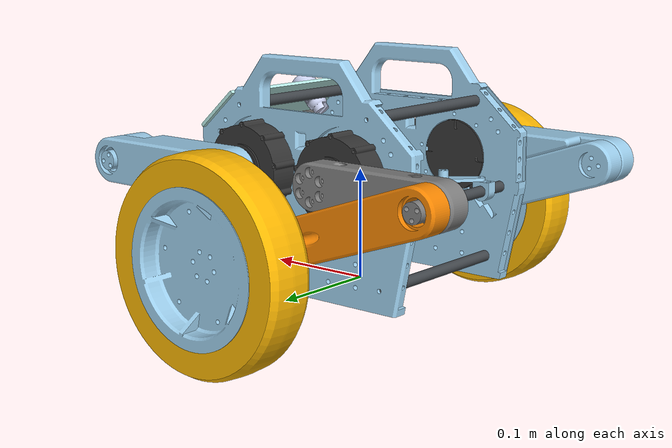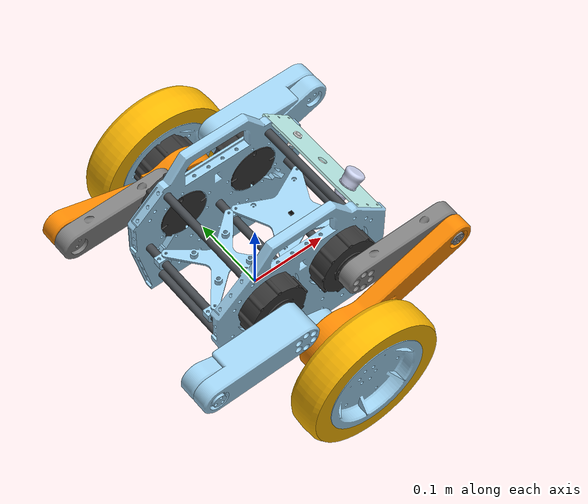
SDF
<?xml version="1.0" ?>
<!-- Generated using onshape-to-robot -->
<!-- OnShape document_id: 7e9c507bcee485da64990cd9 / workspace_id: eabac2199dede4982074148e -->
<sdf version="1.7">
    <model name="cyberbot">
        <!-- Link base -->
        <link name="base">
            <sensor name="imu_sensor" type="imu">
                <always_on>1</always_on>
                <update_rate>10</update_rate>
                <visualize>true</visualize>
                <topic>imu</topic>
            </sensor>
            <inertial>
                <pose relative_to="base">0.00170388 -0.00342466 0.102967 0 0 0</pose>
                <mass>1.76333</mass>
                <inertia>
                    <ixx>0.0141043</ixx>
                    <ixy>-1.25579e-05</ixy>
                    <ixz>-0.000139827</ixz>
                    <iyy>0.00813179</iyy>
                    <iyz>-6.75019e-06</iyz>
                    <izz>0.0181699</izz>
                </inertia>
            </inertial>
            <pose>0 0 0 0 -0 0</pose>
            <!-- Part cybergear -->
            <visual name="cybergear_visual_mesh">
                <pose relative_to="base">-0.05 0.0745 0.108809 1.5708 -0.680678 3.14159</pose>
                <geometry>
                    <mesh>
                        <uri>model://cyberbot_description/sdf/assets/cybergear.stl</uri>
                    </mesh>
                </geometry>
                <material>
                    <ambient>0.207843 0.207843 0.207843 1.0</ambient>
                    <diffuse>0.207843 0.207843 0.207843 1.0</diffuse>
                    <specular>0.1 0.1 0.1 1</specular>
                    <emissive>0 0 0 0</emissive>
                </material>
            </visual>
            <collision name="cybergear_collision_mesh">
                <pose relative_to="base">-0.05 0.0745 0.108809 1.5708 -0.680678 3.14159</pose>
                <geometry>
                    <mesh>
                        <uri>model://cyberbot_description/sdf/assets/cybergear.stl</uri>
                    </mesh>
                </geometry>
            </collision>
            <!-- Part panel -->
            <visual name="panel_visual_mesh">
                <pose relative_to="base">5.29091e-17 -0.0735 0.108809 1.5708 3.29597e-16 5.90644e-30</pose>
                <geometry>
                    <mesh>
                        <uri>model://cyberbot_description/sdf/assets/panel.stl</uri>
                    </mesh>
                </geometry>
                <material>
                    <ambient>0.615686 0.811765 0.929412 1.0</ambient>
                    <diffuse>0.615686 0.811765 0.929412 1.0</diffuse>
                    <specular>0.1 0.1 0.1 1</specular>
                    <emissive>0 0 0 0</emissive>
                </material>
            </visual>
            <collision name="panel_collision_mesh">
                <pose relative_to="base">5.29091e-17 -0.0735 0.108809 1.5708 3.29597e-16 5.90644e-30</pose>
                <geometry>
                    <mesh>
                        <uri>model://cyberbot_description/sdf/assets/panel.stl</uri>
                    </mesh>
                </geometry>
            </collision>
            <!-- Part attachment -->
            <visual name="attachment_visual_mesh">
                <pose relative_to="base">-2.35434e-16 -0.0535 0.0855762 -1.5708 -1.5708 0</pose>
                <geometry>
                    <mesh>
                        <uri>model://cyberbot_description/sdf/assets/attachment.stl</uri>
                    </mesh>
                </geometry>
                <material>
                    <ambient>0.615686 0.811765 0.929412 1.0</ambient>
                    <diffuse>0.615686 0.811765 0.929412 1.0</diffuse>
                    <specular>0.1 0.1 0.1 1</specular>
                    <emissive>0 0 0 0</emissive>
                </material>
            </visual>
            <collision name="attachment_collision_mesh">
                <pose relative_to="base">-2.35434e-16 -0.0535 0.0855762 -1.5708 -1.5708 0</pose>
                <geometry>
                    <mesh>
                        <uri>model://cyberbot_description/sdf/assets/attachment.stl</uri>
                    </mesh>
                </geometry>
            </collision>
            <!-- Part pc_holder -->
            <visual name="pc_holder_visual_mesh">
                <pose relative_to="base">0.06 -0.0035 0.0940762 2.76472e-15 1.76448e-15 3.14159</pose>
                <geometry>
                    <mesh>
                        <uri>model://cyberbot_description/sdf/assets/pc_holder.stl</uri>
                    </mesh>
                </geometry>
                <material>
                    <ambient>0.615686 0.811765 0.929412 1.0</ambient>
                    <diffuse>0.615686 0.811765 0.929412 1.0</diffuse>
                    <specular>0.1 0.1 0.1 1</specular>
                    <emissive>0 0 0 0</emissive>
                </material>
            </visual>
            <collision name="pc_holder_collision_mesh">
                <pose relative_to="base">0.06 -0.0035 0.0940762 2.76472e-15 1.76448e-15 3.14159</pose>
                <geometry>
                    <mesh>
                        <uri>model://cyberbot_description/sdf/assets/pc_holder.stl</uri>
                    </mesh>
                </geometry>
            </collision>
            <!-- Part attachment_2 -->
            <visual name="attachment_2_visual_mesh">
                <pose relative_to="base">-1.72804e-16 0.0365 0.0855762 -1.5708 -1.5708 0</pose>
                <geometry>
                    <mesh>
                        <uri>model://cyberbot_description/sdf/assets/attachment.stl</uri>
                    </mesh>
                </geometry>
                <material>
                    <ambient>0.615686 0.811765 0.929412 1.0</ambient>
                    <diffuse>0.615686 0.811765 0.929412 1.0</diffuse>
                    <specular>0.1 0.1 0.1 1</specular>
                    <emissive>0 0 0 0</emissive>
                </material>
            </visual>
            <collision name="attachment_2_collision_mesh">
                <pose relative_to="base">-1.72804e-16 0.0365 0.0855762 -1.5708 -1.5708 0</pose>
                <geometry>
                    <mesh>
                        <uri>model://cyberbot_description/sdf/assets/attachment.stl</uri>
                    </mesh>
                </geometry>
            </collision>
            <!-- Part pdb_holder -->
            <visual name="pdb_holder_visual_mesh">
                <pose relative_to="base">-0.05 -0.0035 0.0940762 6.11013e-16 -2.78074e-15 -1.5708</pose>
                <geometry>
                    <mesh>
                        <uri>model://cyberbot_description/sdf/assets/pdb_holder.stl</uri>
                    </mesh>
                </geometry>
                <material>
                    <ambient>0.615686 0.811765 0.929412 1.0</ambient>
                    <diffuse>0.615686 0.811765 0.929412 1.0</diffuse>
                    <specular>0.1 0.1 0.1 1</specular>
                    <emissive>0 0 0 0</emissive>
                </material>
            </visual>
            <collision name="pdb_holder_collision_mesh">
                <pose relative_to="base">-0.05 -0.0035 0.0940762 6.11013e-16 -2.78074e-15 -1.5708</pose>
                <geometry>
                    <mesh>
                        <uri>model://cyberbot_description/sdf/assets/pdb_holder.stl</uri>
                    </mesh>
                </geometry>
            </collision>
            <!-- Part carbon_pipe -->
            <visual name="carbon_pipe_visual_mesh">
                <pose relative_to="base">-0.0718163 0.0765 0.160095 -1.5708 -4.52062e-16 -3.14159</pose>
                <geometry>
                    <mesh>
                        <uri>model://cyberbot_description/sdf/assets/carbon_pipe.stl</uri>
                    </mesh>
                </geometry>
                <material>
                    <ambient>0.262745 0.282353 0.301961 1.0</ambient>
                    <diffuse>0.262745 0.282353 0.301961 1.0</diffuse>
                    <specular>0.1 0.1 0.1 1</specular>
                    <emissive>0 0 0 0</emissive>
                </material>
            </visual>
            <collision name="carbon_pipe_collision_mesh">
                <pose relative_to="base">-0.0718163 0.0765 0.160095 -1.5708 -4.52062e-16 -3.14159</pose>
                <geometry>
                    <mesh>
                        <uri>model://cyberbot_description/sdf/assets/carbon_pipe.stl</uri>
                    </mesh>
                </geometry>
            </collision>
            <!-- Part carbon_pipe_2 -->
            <visual name="carbon_pipe_2_visual_mesh">
                <pose relative_to="base">0.1 0.0765 0.0855762 -1.5708 4.44479e-16 3.14159</pose>
                <geometry>
                    <mesh>
                        <uri>model://cyberbot_description/sdf/assets/carbon_pipe.stl</uri>
                    </mesh>
                </geometry>
                <material>
                    <ambient>0.262745 0.282353 0.301961 1.0</ambient>
                    <diffuse>0.262745 0.282353 0.301961 1.0</diffuse>
                    <specular>0.1 0.1 0.1 1</specular>
                    <emissive>0 0 0 0</emissive>
                </material>
            </visual>
            <collision name="carbon_pipe_2_collision_mesh">
                <pose relative_to="base">0.1 0.0765 0.0855762 -1.5708 4.44479e-16 3.14159</pose>
                <geometry>
                    <mesh>
                        <uri>model://cyberbot_description/sdf/assets/carbon_pipe.stl</uri>
                    </mesh>
                </geometry>
            </collision>
            <!-- Part attachment_3 -->
            <visual name="attachment_3_visual_mesh">
                <pose relative_to="base">-0.1 -0.0535 0.0855762 -1.5708 -1.5708 0</pose>
                <geometry>
                    <mesh>
                        <uri>model://cyberbot_description/sdf/assets/attachment.stl</uri>
                    </mesh>
                </geometry>
                <material>
                    <ambient>0.615686 0.811765 0.929412 1.0</ambient>
                    <diffuse>0.615686 0.811765 0.929412 1.0</diffuse>
                    <specular>0.1 0.1 0.1 1</specular>
                    <emissive>0 0 0 0</emissive>
                </material>
            </visual>
            <collision name="attachment_3_collision_mesh">
                <pose relative_to="base">-0.1 -0.0535 0.0855762 -1.5708 -1.5708 0</pose>
                <geometry>
                    <mesh>
                        <uri>model://cyberbot_description/sdf/assets/attachment.stl</uri>
                    </mesh>
                </geometry>
            </collision>
            <!-- Part attachment_4 -->
            <visual name="attachment_4_visual_mesh">
                <pose relative_to="base">0.1 -0.0535 0.0855762 -1.5708 -1.5708 0</pose>
                <geometry>
                    <mesh>
                        <uri>model://cyberbot_description/sdf/assets/attachment.stl</uri>
                    </mesh>
                </geometry>
                <material>
                    <ambient>0.615686 0.811765 0.929412 1.0</ambient>
                    <diffuse>0.615686 0.811765 0.929412 1.0</diffuse>
                    <specular>0.1 0.1 0.1 1</specular>
                    <emissive>0 0 0 0</emissive>
                </material>
            </visual>
            <collision name="attachment_4_collision_mesh">
                <pose relative_to="base">0.1 -0.0535 0.0855762 -1.5708 -1.5708 0</pose>
                <geometry>
                    <mesh>
                        <uri>model://cyberbot_description/sdf/assets/attachment.stl</uri>
                    </mesh>
                </geometry>
            </collision>
            <!-- Part carbon_pipe_3 -->
            <visual name="carbon_pipe_3_visual_mesh">
                <pose relative_to="base">-1.36209e-16 0.0765 0.0855762 -1.5708 4.44479e-16 3.14159</pose>
                <geometry>
                    <mesh>
                        <uri>model://cyberbot_description/sdf/assets/carbon_pipe.stl</uri>
                    </mesh>
                </geometry>
                <material>
                    <ambient>0.262745 0.282353 0.301961 1.0</ambient>
                    <diffuse>0.262745 0.282353 0.301961 1.0</diffuse>
                    <specular>0.1 0.1 0.1 1</specular>
                    <emissive>0 0 0 0</emissive>
                </material>
            </visual>
            <collision name="carbon_pipe_3_collision_mesh">
                <pose relative_to="base">-1.36209e-16 0.0765 0.0855762 -1.5708 4.44479e-16 3.14159</pose>
                <geometry>
                    <mesh>
                        <uri>model://cyberbot_description/sdf/assets/carbon_pipe.stl</uri>
                    </mesh>
                </geometry>
            </collision>
            <!-- Part part_2 -->
            <visual name="part_2_visual_mesh">
                <pose relative_to="base">0.0872765 -0.0439658 0.144436 2.41886 -1.39036e-15 -1.5708</pose>
                <geometry>
                    <mesh>
                        <uri>model://cyberbot_description/sdf/assets/part_2.stl</uri>
                    </mesh>
                </geometry>
                <material>
                    <ambient>0.796078 0.823529 0.937255 1.0</ambient>
                    <diffuse>0.796078 0.823529 0.937255 1.0</diffuse>
                    <specular>0.1 0.1 0.1 1</specular>
                    <emissive>0 0 0 0</emissive>
                </material>
            </visual>
            <collision name="part_2_collision_mesh">
                <pose relative_to="base">0.0872765 -0.0439658 0.144436 2.41886 -1.39036e-15 -1.5708</pose>
                <geometry>
                    <mesh>
                        <uri>model://cyberbot_description/sdf/assets/part_2.stl</uri>
                    </mesh>
                </geometry>
            </collision>
            <!-- Part cybergear_2 -->
            <visual name="cybergear_2_visual_mesh">
                <pose relative_to="base">0.05 -0.0815 0.108809 1.5708 -0.680678 -5.39425e-16</pose>
                <geometry>
                    <mesh>
                        <uri>model://cyberbot_description/sdf/assets/cybergear.stl</uri>
                    </mesh>
                </geometry>
                <material>
                    <ambient>0.207843 0.207843 0.207843 1.0</ambient>
                    <diffuse>0.207843 0.207843 0.207843 1.0</diffuse>
                    <specular>0.1 0.1 0.1 1</specular>
                    <emissive>0 0 0 0</emissive>
                </material>
            </visual>
            <collision name="cybergear_2_collision_mesh">
                <pose relative_to="base">0.05 -0.0815 0.108809 1.5708 -0.680678 -5.39425e-16</pose>
                <geometry>
                    <mesh>
                        <uri>model://cyberbot_description/sdf/assets/cybergear.stl</uri>
                    </mesh>
                </geometry>
            </collision>
            <!-- Part carbon_pipe_4 -->
            <visual name="carbon_pipe_4_visual_mesh">
                <pose relative_to="base">0.0854708 0.0765 0.0196376 -1.5708 4.44479e-16 3.14159</pose>
                <geometry>
                    <mesh>
                        <uri>model://cyberbot_description/sdf/assets/carbon_pipe.stl</uri>
                    </mesh>
                </geometry>
                <material>
                    <ambient>0.262745 0.282353 0.301961 1.0</ambient>
                    <diffuse>0.262745 0.282353 0.301961 1.0</diffuse>
                    <specular>0.1 0.1 0.1 1</specular>
                    <emissive>0 0 0 0</emissive>
                </material>
            </visual>
            <collision name="carbon_pipe_4_collision_mesh">
                <pose relative_to="base">0.0854708 0.0765 0.0196376 -1.5708 4.44479e-16 3.14159</pose>
                <geometry>
                    <mesh>
                        <uri>model://cyberbot_description/sdf/assets/carbon_pipe.stl</uri>
                    </mesh>
                </geometry>
            </collision>
            <!-- Part carbon_pipe_5 -->
            <visual name="carbon_pipe_5_visual_mesh">
                <pose relative_to="base">-0.1 0.0765 0.0855762 -1.5708 4.44479e-16 3.14159</pose>
                <geometry>
                    <mesh>
                        <uri>model://cyberbot_description/sdf/assets/carbon_pipe.stl</uri>
                    </mesh>
                </geometry>
                <material>
                    <ambient>0.262745 0.282353 0.301961 1.0</ambient>
                    <diffuse>0.262745 0.282353 0.301961 1.0</diffuse>
                    <specular>0.1 0.1 0.1 1</specular>
                    <emissive>0 0 0 0</emissive>
                </material>
            </visual>
            <collision name="carbon_pipe_5_collision_mesh">
                <pose relative_to="base">-0.1 0.0765 0.0855762 -1.5708 4.44479e-16 3.14159</pose>
                <geometry>
                    <mesh>
                        <uri>model://cyberbot_description/sdf/assets/carbon_pipe.stl</uri>
                    </mesh>
                </geometry>
            </collision>
            <!-- Part button_blende -->
            <visual name="button_blende_visual_mesh">
                <pose relative_to="base">0.0971981 -1.94289e-16 0.155686 2.41886 -9.87631e-16 -1.5708</pose>
                <geometry>
                    <mesh>
                        <uri>model://cyberbot_description/sdf/assets/button_blende.stl</uri>
                    </mesh>
                </geometry>
                <material>
                    <ambient>0.737255 0.937255 0.917647 1.0</ambient>
                    <diffuse>0.737255 0.937255 0.917647 1.0</diffuse>
                    <specular>0.1 0.1 0.1 1</specular>
                    <emissive>0 0 0 0</emissive>
                </material>
            </visual>
            <collision name="button_blende_collision_mesh">
                <pose relative_to="base">0.0971981 -1.94289e-16 0.155686 2.41886 -9.87631e-16 -1.5708</pose>
                <geometry>
                    <mesh>
                        <uri>model://cyberbot_description/sdf/assets/button_blende.stl</uri>
                    </mesh>
                </geometry>
            </collision>
            <!-- Part panel_2 -->
            <visual name="panel_2_visual_mesh">
                <pose relative_to="base">-1.33313e-16 0.0665 0.108809 1.5708 -2.19504e-16 3.14159</pose>
                <geometry>
                    <mesh>
                        <uri>model://cyberbot_description/sdf/assets/panel.stl</uri>
                    </mesh>
                </geometry>
                <material>
                    <ambient>0.615686 0.811765 0.929412 1.0</ambient>
                    <diffuse>0.615686 0.811765 0.929412 1.0</diffuse>
                    <specular>0.1 0.1 0.1 1</specular>
                    <emissive>0 0 0 0</emissive>
                </material>
            </visual>
            <collision name="panel_2_collision_mesh">
                <pose relative_to="base">-1.33313e-16 0.0665 0.108809 1.5708 -2.19504e-16 3.14159</pose>
                <geometry>
                    <mesh>
                        <uri>model://cyberbot_description/sdf/assets/panel.stl</uri>
                    </mesh>
                </geometry>
            </collision>
            <!-- Part attachment_5 -->
            <visual name="attachment_5_visual_mesh">
                <pose relative_to="base">-0.1 0.0365 0.0855762 -1.5708 -1.5708 0</pose>
                <geometry>
                    <mesh>
                        <uri>model://cyberbot_description/sdf/assets/attachment.stl</uri>
                    </mesh>
                </geometry>
                <material>
                    <ambient>0.615686 0.811765 0.929412 1.0</ambient>
                    <diffuse>0.615686 0.811765 0.929412 1.0</diffuse>
                    <specular>0.1 0.1 0.1 1</specular>
                    <emissive>0 0 0 0</emissive>
                </material>
            </visual>
            <collision name="attachment_5_collision_mesh">
                <pose relative_to="base">-0.1 0.0365 0.0855762 -1.5708 -1.5708 0</pose>
                <geometry>
                    <mesh>
                        <uri>model://cyberbot_description/sdf/assets/attachment.stl</uri>
                    </mesh>
                </geometry>
            </collision>
            <!-- Part cybergear_3 -->
            <visual name="cybergear_3_visual_mesh">
                <pose relative_to="base">0.05 0.0745 0.108809 1.5708 0.715585 -3.14159</pose>
                <geometry>
                    <mesh>
                        <uri>model://cyberbot_description/sdf/assets/cybergear.stl</uri>
                    </mesh>
                </geometry>
                <material>
                    <ambient>0.207843 0.207843 0.207843 1.0</ambient>
                    <diffuse>0.207843 0.207843 0.207843 1.0</diffuse>
                    <specular>0.1 0.1 0.1 1</specular>
                    <emissive>0 0 0 0</emissive>
                </material>
            </visual>
            <collision name="cybergear_3_collision_mesh">
                <pose relative_to="base">0.05 0.0745 0.108809 1.5708 0.715585 -3.14159</pose>
                <geometry>
                    <mesh>
                        <uri>model://cyberbot_description/sdf/assets/cybergear.stl</uri>
                    </mesh>
                </geometry>
            </collision>
            <!-- Part imu -->
            <visual name="imu_visual_mesh">
                <pose relative_to="base">0.0499676 -0.0035185 0.0970762 -1.8755e-15 2.76472e-15 1.5708</pose>
                <geometry>
                    <mesh>
                        <uri>model://cyberbot_description/sdf/assets/imu.stl</uri>
                    </mesh>
                </geometry>
                <material>
                    <ambient>0 0 0 1.0</ambient>
                    <diffuse>0 0 0 1.0</diffuse>
                    <specular>0.1 0.1 0.1 1</specular>
                    <emissive>0 0 0 0</emissive>
                </material>
            </visual>
            <collision name="imu_collision_mesh">
                <pose relative_to="base">0.0499676 -0.0035185 0.0970762 -1.8755e-15 2.76472e-15 1.5708</pose>
                <geometry>
                    <mesh>
                        <uri>model://cyberbot_description/sdf/assets/imu.stl</uri>
                    </mesh>
                </geometry>
            </collision>
            <!-- Part carbon_pipe_6 -->
            <visual name="carbon_pipe_6_visual_mesh">
                <pose relative_to="base">0.0718163 0.0765 0.160095 -1.5708 4.44479e-16 3.14159</pose>
                <geometry>
                    <mesh>
                        <uri>model://cyberbot_description/sdf/assets/carbon_pipe.stl</uri>
                    </mesh>
                </geometry>
                <material>
                    <ambient>0.262745 0.282353 0.301961 1.0</ambient>
                    <diffuse>0.262745 0.282353 0.301961 1.0</diffuse>
                    <specular>0.1 0.1 0.1 1</specular>
                    <emissive>0 0 0 0</emissive>
                </material>
            </visual>
            <collision name="carbon_pipe_6_collision_mesh">
                <pose relative_to="base">0.0718163 0.0765 0.160095 -1.5708 4.44479e-16 3.14159</pose>
                <geometry>
                    <mesh>
                        <uri>model://cyberbot_description/sdf/assets/carbon_pipe.stl</uri>
                    </mesh>
                </geometry>
            </collision>
            <!-- Part carbon_pipe_7 -->
            <visual name="carbon_pipe_7_visual_mesh">
                <pose relative_to="base">-0.0854708 -0.0835 0.0196376 1.5708 4.44479e-16 3.14159</pose>
                <geometry>
                    <mesh>
                        <uri>model://cyberbot_description/sdf/assets/carbon_pipe.stl</uri>
                    </mesh>
                </geometry>
                <material>
                    <ambient>0.262745 0.282353 0.301961 1.0</ambient>
                    <diffuse>0.262745 0.282353 0.301961 1.0</diffuse>
                    <specular>0.1 0.1 0.1 1</specular>
                    <emissive>0 0 0 0</emissive>
                </material>
            </visual>
            <collision name="carbon_pipe_7_collision_mesh">
                <pose relative_to="base">-0.0854708 -0.0835 0.0196376 1.5708 4.44479e-16 3.14159</pose>
                <geometry>
                    <mesh>
                        <uri>model://cyberbot_description/sdf/assets/carbon_pipe.stl</uri>
                    </mesh>
                </geometry>
            </collision>
            <!-- Part cybergear_4 -->
            <visual name="cybergear_4_visual_mesh">
                <pose relative_to="base">-0.05 -0.0815 0.108809 1.5708 0.715585 5.79061e-16</pose>
                <geometry>
                    <mesh>
                        <uri>model://cyberbot_description/sdf/assets/cybergear.stl</uri>
                    </mesh>
                </geometry>
                <material>
                    <ambient>0.207843 0.207843 0.207843 1.0</ambient>
                    <diffuse>0.207843 0.207843 0.207843 1.0</diffuse>
                    <specular>0.1 0.1 0.1 1</specular>
                    <emissive>0 0 0 0</emissive>
                </material>
            </visual>
            <collision name="cybergear_4_collision_mesh">
                <pose relative_to="base">-0.05 -0.0815 0.108809 1.5708 0.715585 5.79061e-16</pose>
                <geometry>
                    <mesh>
                        <uri>model://cyberbot_description/sdf/assets/cybergear.stl</uri>
                    </mesh>
                </geometry>
            </collision>
            <!-- Part attachment_6 -->
            <visual name="attachment_6_visual_mesh">
                <pose relative_to="base">0.1 0.0365 0.0855762 -1.5708 -1.5708 0</pose>
                <geometry>
                    <mesh>
                        <uri>model://cyberbot_description/sdf/assets/attachment.stl</uri>
                    </mesh>
                </geometry>
                <material>
                    <ambient>0.615686 0.811765 0.929412 1.0</ambient>
                    <diffuse>0.615686 0.811765 0.929412 1.0</diffuse>
                    <specular>0.1 0.1 0.1 1</specular>
                    <emissive>0 0 0 0</emissive>
                </material>
            </visual>
            <collision name="attachment_6_collision_mesh">
                <pose relative_to="base">0.1 0.0365 0.0855762 -1.5708 -1.5708 0</pose>
                <geometry>
                    <mesh>
                        <uri>model://cyberbot_description/sdf/assets/attachment.stl</uri>
                    </mesh>
                </geometry>
            </collision>
            <!-- Part dc_power_jack_5_5_2_1_body -->
            <visual name="dc_power_jack_5_5_2_1_body_visual_mesh">
                <pose relative_to="base">0.0950815 0.045 0.153286 -0.722734 -1.37993e-15 -1.5708</pose>
                <geometry>
                    <mesh>
                        <uri>model://cyberbot_description/sdf/assets/dc_power_jack_5_5_2_1_body.stl</uri>
                    </mesh>
                </geometry>
                <material>
                    <ambient>1 1 1 1.0</ambient>
                    <diffuse>1 1 1 1.0</diffuse>
                    <specular>0.1 0.1 0.1 1</specular>
                    <emissive>0 0 0 0</emissive>
                </material>
            </visual>
            <collision name="dc_power_jack_5_5_2_1_body_collision_mesh">
                <pose relative_to="base">0.0950815 0.045 0.153286 -0.722734 -1.37993e-15 -1.5708</pose>
                <geometry>
                    <mesh>
                        <uri>model://cyberbot_description/sdf/assets/dc_power_jack_5_5_2_1_body.stl</uri>
                    </mesh>
                </geometry>
            </collision>
            <!-- Part bolt -->
            <visual name="bolt_visual_mesh">
                <pose relative_to="base">0.0971981 0.045 0.155686 -2.29353 -1.07653e-15 -1.5708</pose>
                <geometry>
                    <mesh>
                        <uri>model://cyberbot_description/sdf/assets/bolt.stl</uri>
                    </mesh>
                </geometry>
                <material>
                    <ambient>1 1 1 1.0</ambient>
                    <diffuse>1 1 1 1.0</diffuse>
                    <specular>0.1 0.1 0.1 1</specular>
                    <emissive>0 0 0 0</emissive>
                </material>
            </visual>
            <collision name="bolt_collision_mesh">
                <pose relative_to="base">0.0971981 0.045 0.155686 -2.29353 -1.07653e-15 -1.5708</pose>
                <geometry>
                    <mesh>
                        <uri>model://cyberbot_description/sdf/assets/bolt.stl</uri>
                    </mesh>
                </geometry>
            </collision>
        </link>
        <!-- Link leg_top_other -->
        <link name="leg_top_other">
            <inertial>
                <pose relative_to="leg_top_other">-0.046887 -0.0016843 -0.0253058 0 0 0</pose>
                <mass>0.095</mass>
                <inertia>
                    <ixx>2.59647e-05</ixx>
                    <ixy>-1.43021e-06</ixy>
                    <ixz>-1.40489e-05</ixz>
                    <iyy>0.000166476</iyy>
                    <iyz>2.25046e-06</iyz>
                    <izz>0.000164641</izz>
                </inertia>
            </inertial>
            <pose relative_to="joint_left_front">0 0 0 0 -0 0</pose>
            <!-- Part leg_top_other -->
            <visual name="leg_top_other_visual_mesh">
                <pose relative_to="leg_top_other">-0.06 -1.38778e-17 -0.044 0 3.80492e-32 0</pose>
                <geometry>
                    <mesh>
                        <uri>model://cyberbot_description/sdf/assets/leg_top_other.stl</uri>
                    </mesh>
                </geometry>
                <material>
                    <ambient>0.615686 0.811765 0.929412 1.0</ambient>
                    <diffuse>0.615686 0.811765 0.929412 1.0</diffuse>
                    <specular>0.1 0.1 0.1 1</specular>
                    <emissive>0 0 0 0</emissive>
                </material>
            </visual>
            <collision name="leg_top_other_collision_mesh">
                <pose relative_to="leg_top_other">-0.06 -1.38778e-17 -0.044 0 3.80492e-32 0</pose>
                <geometry>
                    <mesh>
                        <uri>model://cyberbot_description/sdf/assets/leg_top_other.stl</uri>
                    </mesh>
                </geometry>
            </collision>
        </link>
        <!-- Link leg_bottom_other -->
        <link name="leg_bottom_other">
            <inertial>
                <pose relative_to="leg_bottom_other">0.0839828 3.02125e-18 -0.0103274 0 0 0</pose>
                <mass>0.085</mass>
                <inertia>
                    <ixx>1.54332e-05</ixx>
                    <ixy>1.77553e-37</ixy>
                    <ixz>4.80161e-06</ixz>
                    <iyy>0.000301804</iyy>
                    <iyz>1.14068e-35</iyz>
                    <izz>0.000308476</izz>
                </inertia>
            </inertial>
            <pose relative_to="passive_left_front">0 0 0 0 -0 0</pose>
            <!-- Part leg_bottom_other -->
            <visual name="leg_bottom_other_visual_mesh">
                <pose relative_to="leg_bottom_other">0.09 6.93889e-18 -0.022 0 -0 0</pose>
                <geometry>
                    <mesh>
                        <uri>model://cyberbot_description/sdf/assets/leg_bottom_other.stl</uri>
                    </mesh>
                </geometry>
                <material>
                    <ambient>0.615686 0.811765 0.929412 1.0</ambient>
                    <diffuse>0.615686 0.811765 0.929412 1.0</diffuse>
                    <specular>0.1 0.1 0.1 1</specular>
                    <emissive>0 0 0 0</emissive>
                </material>
            </visual>
            <collision name="leg_bottom_other_collision_mesh">
                <pose relative_to="leg_bottom_other">0.09 6.93889e-18 -0.022 0 -0 0</pose>
                <geometry>
                    <mesh>
                        <uri>model://cyberbot_description/sdf/assets/leg_bottom_other.stl</uri>
                    </mesh>
                </geometry>
            </collision>
        </link>
        <!-- Joint from leg_top_other to leg_bottom_other -->
        <joint name="passive_left_front" type="revolute">
            <pose relative_to="leg_top_other">-0.12 -2.77556e-17 -0.022 3.14159 8.83661e-16 0.33985</pose>
            <parent>leg_top_other</parent>
            <child>leg_bottom_other</child>
            <axis>
                <xyz>0 0 1</xyz>
                <limit>
                    <effort>10</effort>
                    <velocity>6</velocity>
                </limit>
                <lower>-3.141592653589793</lower>
                <upper>3.141592653589793</upper>
            </axis>
        </joint>
        <!-- Joint from base to leg_top_other -->
        <joint name="joint_left_front" type="revolute">
            <pose relative_to="base">-0.05 -0.1095 0.108809 -1.5708 -0.00691612 6.2886e-16</pose>
            <parent>base</parent>
            <child>leg_top_other</child>
            <axis>
                <xyz>0 0 1</xyz>
                <limit>
                    <effort>10</effort>
                    <velocity>6</velocity>
                </limit>
                <lower>-3.141592653589793</lower>
                <upper>3.141592653589793</upper>
            </axis>
        </joint>
        <!-- Link leg_top_motor -->
        <link name="leg_top_motor">
            <inertial>
                <pose relative_to="leg_top_motor">-0.0624971 -0.000427276 -0.0118422 0 0 0</pose>
                <mass>0.074</mass>
                <inertia>
                    <ixx>1.33602e-05</ixx>
                    <ixy>7.9025e-08</ixy>
                    <ixz>-4.48072e-06</ixz>
                    <iyy>0.000148627</iyy>
                    <iyz>2.66494e-08</iyz>
                    <izz>0.000153468</izz>
                </inertia>
            </inertial>
            <pose relative_to="joint_left_rear">0 0 0 0 -0 0</pose>
            <!-- Part leg_top_motor -->
            <visual name="leg_top_motor_visual_mesh">
                <pose relative_to="leg_top_motor">-0.06 1.38778e-17 -1.38778e-17 3.14159 -1.69482e-32 4.33681e-19</pose>
                <geometry>
                    <mesh>
                        <uri>model://cyberbot_description/sdf/assets/leg_top_motor.stl</uri>
                    </mesh>
                </geometry>
                <material>
                    <ambient>0.498039 0.498039 0.498039 1.0</ambient>
                    <diffuse>0.498039 0.498039 0.498039 1.0</diffuse>
                    <specular>0.1 0.1 0.1 1</specular>
                    <emissive>0 0 0 0</emissive>
                </material>
            </visual>
            <collision name="leg_top_motor_collision_mesh">
                <pose relative_to="leg_top_motor">-0.06 1.38778e-17 -1.38778e-17 3.14159 -1.69482e-32 4.33681e-19</pose>
                <geometry>
                    <mesh>
                        <uri>model://cyberbot_description/sdf/assets/leg_top_motor.stl</uri>
                    </mesh>
                </geometry>
            </collision>
        </link>
        <!-- Link linkage -->
        <link name="linkage">
            <inertial>
                <pose relative_to="linkage">0.154139 0.0541811 0.00727959 0 0 0</pose>
                <mass>0.468</mass>
                <inertia>
                    <ixx>0.000374526</ixx>
                    <ixy>-0.00026884</ixy>
                    <ixz>-0.000131435</ixz>
                    <iyy>0.00103876</iyy>
                    <iyz>-4.64537e-05</iyz>
                    <izz>0.00116646</izz>
                </inertia>
            </inertial>
            <pose relative_to="passive_left_rear">0 0 0 0 -0 0</pose>
            <!-- Part bottom_leg_motor -->
            <visual name="bottom_leg_motor_visual_mesh">
                <pose relative_to="linkage">-0.00663577 0.0188671 -0.022 -1.35483e-14 5.16144e-16 0.338199</pose>
                <geometry>
                    <mesh>
                        <uri>model://cyberbot_description/sdf/assets/bottom_leg_motor.stl</uri>
                    </mesh>
                </geometry>
                <material>
                    <ambient>0.972549 0.529412 0.00392157 1.0</ambient>
                    <diffuse>0.972549 0.529412 0.00392157 1.0</diffuse>
                    <specular>0.1 0.1 0.1 1</specular>
                    <emissive>0 0 0 0</emissive>
                </material>
            </visual>
            <collision name="bottom_leg_motor_collision_mesh">
                <pose relative_to="linkage">-0.00663577 0.0188671 -0.022 -1.35483e-14 5.16144e-16 0.338199</pose>
                <geometry>
                    <mesh>
                        <uri>model://cyberbot_description/sdf/assets/bottom_leg_motor.stl</uri>
                    </mesh>
                </geometry>
            </collision>
            <!-- Part knuppel -->
            <visual name="knuppel_visual_mesh">
                <pose relative_to="linkage">0.169804 0.0597219 -0.022 -3.14159 -5.16144e-16 -2.80339</pose>
                <geometry>
                    <mesh>
                        <uri>model://cyberbot_description/sdf/assets/knuppel.stl</uri>
                    </mesh>
                </geometry>
                <material>
                    <ambient>0.231373 0.380392 0.705882 1.0</ambient>
                    <diffuse>0.231373 0.380392 0.705882 1.0</diffuse>
                    <specular>0.1 0.1 0.1 1</specular>
                    <emissive>0 0 0 0</emissive>
                </material>
            </visual>
            <collision name="knuppel_collision_mesh">
                <pose relative_to="linkage">0.169804 0.0597219 -0.022 -3.14159 -5.16144e-16 -2.80339</pose>
                <geometry>
                    <mesh>
                        <uri>model://cyberbot_description/sdf/assets/knuppel.stl</uri>
                    </mesh>
                </geometry>
            </collision>
            <!-- Part cybergear_5 -->
            <visual name="cybergear_5_visual_mesh">
                <pose relative_to="linkage">0.169804 0.0597219 0.007 3.32563e-16 -6.56133e-15 -1.2326</pose>
                <geometry>
                    <mesh>
                        <uri>model://cyberbot_description/sdf/assets/cybergear.stl</uri>
                    </mesh>
                </geometry>
                <material>
                    <ambient>0.207843 0.207843 0.207843 1.0</ambient>
                    <diffuse>0.207843 0.207843 0.207843 1.0</diffuse>
                    <specular>0.1 0.1 0.1 1</specular>
                    <emissive>0 0 0 0</emissive>
                </material>
            </visual>
            <collision name="cybergear_5_collision_mesh">
                <pose relative_to="linkage">0.169804 0.0597219 0.007 3.32563e-16 -6.56133e-15 -1.2326</pose>
                <geometry>
                    <mesh>
                        <uri>model://cyberbot_description/sdf/assets/cybergear.stl</uri>
                    </mesh>
                </geometry>
            </collision>
        </link>
        <!-- Link wheel -->
        <link name="wheel">
            <inertial>
                <pose relative_to="wheel">2.88663e-08 -2.1825e-17 -0.006 0 0 0</pose>
                <mass>1.00219</mass>
                <inertia>
                    <ixx>0.00287287</ixx>
                    <ixy>-1.12128e-17</ixy>
                    <ixz>1.11651e-17</ixz>
                    <iyy>0.00287286</iyy>
                    <iyz>1.80101e-18</iyz>
                    <izz>0.00546952</izz>
                </inertia>
            </inertial>
            <pose relative_to="wheel_left">0 0 0 0 -0 0</pose>
            <!-- Part tire_5_inch -->
            <visual name="tire_5_inch_visual_mesh">
                <pose relative_to="wheel">-0.167081 0.0445012 -0.00741544 -3.14159 -2.14686e-15 -1.38778e-15</pose>
                <geometry>
                    <mesh>
                        <uri>model://cyberbot_description/sdf/assets/tire_5_inch.stl</uri>
                    </mesh>
                </geometry>
                <material>
                    <ambient>0.980392 0.713725 0.00392157 1.0</ambient>
                    <diffuse>0.980392 0.713725 0.00392157 1.0</diffuse>
                    <specular>0.1 0.1 0.1 1</specular>
                    <emissive>0 0 0 0</emissive>
                </material>
            </visual>
            <collision name="tire_5_inch_collision_mesh">
                <pose relative_to="wheel">-0.167081 0.0445012 -0.00741544 -3.14159 -2.14686e-15 -1.38778e-15</pose>
                <geometry>
                    <mesh>
                        <uri>model://cyberbot_description/sdf/assets/tire_5_inch.stl</uri>
                    </mesh>
                </geometry>
            </collision>
            <!-- Part hub -->
            <visual name="hub_visual_mesh">
                <pose relative_to="wheel">-2.35229e-15 -2.08167e-17 -0.006 3.14159 -1.16027e-15 3.33067e-16</pose>
                <geometry>
                    <mesh>
                        <uri>model://cyberbot_description/sdf/assets/hub.stl</uri>
                    </mesh>
                </geometry>
                <material>
                    <ambient>0.615686 0.811765 0.929412 1.0</ambient>
                    <diffuse>0.615686 0.811765 0.929412 1.0</diffuse>
                    <specular>0.1 0.1 0.1 1</specular>
                    <emissive>0 0 0 0</emissive>
                </material>
            </visual>
            <collision name="hub_collision_mesh">
                <pose relative_to="wheel">-2.35229e-15 -2.08167e-17 -0.006 3.14159 -1.16027e-15 3.33067e-16</pose>
                <geometry>
                    <mesh>
                        <uri>model://cyberbot_description/sdf/assets/hub.stl</uri>
                    </mesh>
                </geometry>
            </collision>
            <!-- Part hub_2 -->
            <visual name="hub_2_visual_mesh">
                <pose relative_to="wheel">-2.34882e-15 -3.46945e-17 -0.006 -4.93038e-32 4.93038e-32 0</pose>
                <geometry>
                    <mesh>
                        <uri>model://cyberbot_description/sdf/assets/hub.stl</uri>
                    </mesh>
                </geometry>
                <material>
                    <ambient>0.615686 0.811765 0.929412 1.0</ambient>
                    <diffuse>0.615686 0.811765 0.929412 1.0</diffuse>
                    <specular>0.1 0.1 0.1 1</specular>
                    <emissive>0 0 0 0</emissive>
                </material>
            </visual>
            <collision name="hub_2_collision_mesh">
                <pose relative_to="wheel">-2.34882e-15 -3.46945e-17 -0.006 -4.93038e-32 4.93038e-32 0</pose>
                <geometry>
                    <mesh>
                        <uri>model://cyberbot_description/sdf/assets/hub.stl</uri>
                    </mesh>
                </geometry>
            </collision>
        </link>
        <!-- Joint from linkage to wheel -->
        <joint name="wheel_left" type="revolute">
            <pose relative_to="linkage">0.169804 0.0597219 0.035 3.14159 3.20598e-16 0.338199</pose>
            <parent>linkage</parent>
            <child>wheel</child>
            <axis>
                <xyz>0 0 1</xyz>
                <limit>
                    <effort>10</effort>
                    <velocity>6</velocity>
                </limit>
                <lower>-3.141592653589793</lower>
                <upper>3.141592653589793</upper>
            </axis>
        </joint>
        <!-- Joint from leg_top_motor to linkage -->
        <joint name="passive_left_rear" type="revolute">
            <pose relative_to="leg_top_motor">-0.12 1.38778e-17 -0.045 3.14159 -1.69482e-32 4.33681e-19</pose>
            <parent>leg_top_motor</parent>
            <child>linkage</child>
            <axis>
                <xyz>0 0 1</xyz>
                <limit>
                    <effort>10</effort>
                    <velocity>6</velocity>
                </limit>
                <lower>-3.141592653589793</lower>
                <upper>3.141592653589793</upper>
            </axis>
        </joint>
        <!-- Joint from base to leg_top_motor -->
        <joint name="joint_left_rear" type="revolute">
            <pose relative_to="base">0.05 -0.1095 0.108809 1.5708 -0.00130149 3.14159</pose>
            <parent>base</parent>
            <child>leg_top_motor</child>
            <axis>
                <xyz>0 0 1</xyz>
                <limit>
                    <effort>10</effort>
                    <velocity>6</velocity>
                </limit>
                <lower>-3.141592653589793</lower>
                <upper>3.141592653589793</upper>
            </axis>
        </joint>
        <!-- Link leg_top_other_2 -->
        <link name="leg_top_other_2">
            <inertial>
                <pose relative_to="leg_top_other_2">-0.046887 -0.0016843 -0.0253058 0 0 0</pose>
                <mass>0.095</mass>
                <inertia>
                    <ixx>2.59647e-05</ixx>
                    <ixy>-1.43021e-06</ixy>
                    <ixz>-1.40489e-05</ixz>
                    <iyy>0.000166476</iyy>
                    <iyz>2.25046e-06</iyz>
                    <izz>0.000164641</izz>
                </inertia>
            </inertial>
            <pose relative_to="joint_right_rear">0 0 0 0 -0 0</pose>
            <!-- Part leg_top_other_2 -->
            <visual name="leg_top_other_2_visual_mesh">
                <pose relative_to="leg_top_other_2">-0.06 -1.38778e-17 -0.044 0 4.06371e-32 2.1684e-19</pose>
                <geometry>
                    <mesh>
                        <uri>model://cyberbot_description/sdf/assets/leg_top_other.stl</uri>
                    </mesh>
                </geometry>
                <material>
                    <ambient>0.615686 0.811765 0.929412 1.0</ambient>
                    <diffuse>0.615686 0.811765 0.929412 1.0</diffuse>
                    <specular>0.1 0.1 0.1 1</specular>
                    <emissive>0 0 0 0</emissive>
                </material>
            </visual>
            <collision name="leg_top_other_2_collision_mesh">
                <pose relative_to="leg_top_other_2">-0.06 -1.38778e-17 -0.044 0 4.06371e-32 2.1684e-19</pose>
                <geometry>
                    <mesh>
                        <uri>model://cyberbot_description/sdf/assets/leg_top_other.stl</uri>
                    </mesh>
                </geometry>
            </collision>
        </link>
        <!-- Link leg_bottom_other_2 -->
        <link name="leg_bottom_other_2">
            <inertial>
                <pose relative_to="leg_bottom_other_2">0.0839828 1.6565e-17 -0.0103274 0 0 0</pose>
                <mass>0.085</mass>
                <inertia>
                    <ixx>1.54332e-05</ixx>
                    <ixy>8.56715e-22</ixy>
                    <ixz>4.80161e-06</ixz>
                    <iyy>0.000301804</iyy>
                    <iyz>2.66543e-22</iyz>
                    <izz>0.000308476</izz>
                </inertia>
            </inertial>
            <pose relative_to="passive_right_rear">0 0 0 0 -0 0</pose>
            <!-- Part leg_bottom_other_2 -->
            <visual name="leg_bottom_other_2_visual_mesh">
                <pose relative_to="leg_bottom_other_2">0.09 2.08167e-17 -0.022 3.9443e-31 -4.93038e-32 5.55112e-17</pose>
                <geometry>
                    <mesh>
                        <uri>model://cyberbot_description/sdf/assets/leg_bottom_other.stl</uri>
                    </mesh>
                </geometry>
                <material>
                    <ambient>0.615686 0.811765 0.929412 1.0</ambient>
                    <diffuse>0.615686 0.811765 0.929412 1.0</diffuse>
                    <specular>0.1 0.1 0.1 1</specular>
                    <emissive>0 0 0 0</emissive>
                </material>
            </visual>
            <collision name="leg_bottom_other_2_collision_mesh">
                <pose relative_to="leg_bottom_other_2">0.09 2.08167e-17 -0.022 3.9443e-31 -4.93038e-32 5.55112e-17</pose>
                <geometry>
                    <mesh>
                        <uri>model://cyberbot_description/sdf/assets/leg_bottom_other.stl</uri>
                    </mesh>
                </geometry>
            </collision>
        </link>
        <!-- Joint from leg_top_other_2 to leg_bottom_other_2 -->
        <joint name="passive_right_rear" type="revolute">
            <pose relative_to="leg_top_other_2">-0.12 -6.93889e-17 -0.022 -3.14159 -2.09227e-16 0.334797</pose>
            <parent>leg_top_other_2</parent>
            <child>leg_bottom_other_2</child>
            <axis>
                <xyz>0 0 1</xyz>
                <limit>
                    <effort>10</effort>
                    <velocity>6</velocity>
                </limit>
                <lower>-3.141592653589793</lower>
                <upper>3.141592653589793</upper>
            </axis>
        </joint>
        <!-- Joint from base to leg_top_other_2 -->
        <joint name="joint_right_rear" type="revolute">
            <pose relative_to="base">0.05 0.1025 0.108809 -1.5708 0.00176296 3.14159</pose>
            <parent>base</parent>
            <child>leg_top_other_2</child>
            <axis>
                <xyz>0 0 1</xyz>
                <limit>
                    <effort>10</effort>
                    <velocity>6</velocity>
                </limit>
                <lower>-3.141592653589793</lower>
                <upper>3.141592653589793</upper>
            </axis>
        </joint>
        <!-- Link leg_top_motor_2 -->
        <link name="leg_top_motor_2">
            <inertial>
                <pose relative_to="leg_top_motor_2">-0.0624971 -0.000427276 -0.0118422 0 0 0</pose>
                <mass>0.074</mass>
                <inertia>
                    <ixx>1.33602e-05</ixx>
                    <ixy>7.9025e-08</ixy>
                    <ixz>-4.48072e-06</ixz>
                    <iyy>0.000148627</iyy>
                    <iyz>2.66494e-08</iyz>
                    <izz>0.000153468</izz>
                </inertia>
            </inertial>
            <pose relative_to="joint_right_front">0 0 0 0 -0 0</pose>
            <!-- Part leg_top_motor_2 -->
            <visual name="leg_top_motor_2_visual_mesh">
                <pose relative_to="leg_top_motor_2">-0.06 0 0 -3.14159 3.08149e-33 0</pose>
                <geometry>
                    <mesh>
                        <uri>model://cyberbot_description/sdf/assets/leg_top_motor.stl</uri>
                    </mesh>
                </geometry>
                <material>
                    <ambient>0.498039 0.498039 0.498039 1.0</ambient>
                    <diffuse>0.498039 0.498039 0.498039 1.0</diffuse>
                    <specular>0.1 0.1 0.1 1</specular>
                    <emissive>0 0 0 0</emissive>
                </material>
            </visual>
            <collision name="leg_top_motor_2_collision_mesh">
                <pose relative_to="leg_top_motor_2">-0.06 0 0 -3.14159 3.08149e-33 0</pose>
                <geometry>
                    <mesh>
                        <uri>model://cyberbot_description/sdf/assets/leg_top_motor.stl</uri>
                    </mesh>
                </geometry>
            </collision>
        </link>
        <!-- Link linkage_2 -->
        <link name="linkage_2">
            <inertial>
                <pose relative_to="linkage_2">0.154248 0.05387 0.00727959 0 0 0</pose>
                <mass>0.468</mass>
                <inertia>
                    <ixx>0.000373444</ixx>
                    <ixy>-0.000267498</ixy>
                    <ixz>-0.000131529</ixz>
                    <iyy>0.00103984</iyy>
                    <iyz>-4.61885e-05</iyz>
                    <izz>0.00116646</izz>
                </inertia>
            </inertial>
            <pose relative_to="passive_right_front">0 0 0 0 -0 0</pose>
            <!-- Part bottom_leg_motor_2 -->
            <visual name="bottom_leg_motor_2_visual_mesh">
                <pose relative_to="linkage_2">-0.00659769 0.0188804 -0.022 1.1176e-16 3.60046e-17 0.336181</pose>
                <geometry>
                    <mesh>
                        <uri>model://cyberbot_description/sdf/assets/bottom_leg_motor.stl</uri>
                    </mesh>
                </geometry>
                <material>
                    <ambient>0.972549 0.529412 0.00392157 1.0</ambient>
                    <diffuse>0.972549 0.529412 0.00392157 1.0</diffuse>
                    <specular>0.1 0.1 0.1 1</specular>
                    <emissive>0 0 0 0</emissive>
                </material>
            </visual>
            <collision name="bottom_leg_motor_2_collision_mesh">
                <pose relative_to="linkage_2">-0.00659769 0.0188804 -0.022 1.1176e-16 3.60046e-17 0.336181</pose>
                <geometry>
                    <mesh>
                        <uri>model://cyberbot_description/sdf/assets/bottom_leg_motor.stl</uri>
                    </mesh>
                </geometry>
            </collision>
            <!-- Part knuppel_2 -->
            <visual name="knuppel_2_visual_mesh">
                <pose relative_to="linkage_2">0.169924 0.0593792 -0.022 3.14159 3.12219e-17 -2.80541</pose>
                <geometry>
                    <mesh>
                        <uri>model://cyberbot_description/sdf/assets/knuppel.stl</uri>
                    </mesh>
                </geometry>
                <material>
                    <ambient>0.231373 0.380392 0.705882 1.0</ambient>
                    <diffuse>0.231373 0.380392 0.705882 1.0</diffuse>
                    <specular>0.1 0.1 0.1 1</specular>
                    <emissive>0 0 0 0</emissive>
                </material>
            </visual>
            <collision name="knuppel_2_collision_mesh">
                <pose relative_to="linkage_2">0.169924 0.0593792 -0.022 3.14159 3.12219e-17 -2.80541</pose>
                <geometry>
                    <mesh>
                        <uri>model://cyberbot_description/sdf/assets/knuppel.stl</uri>
                    </mesh>
                </geometry>
            </collision>
            <!-- Part cybergear_6 -->
            <visual name="cybergear_6_visual_mesh">
                <pose relative_to="linkage_2">0.169924 0.0593792 0.007 -3.60046e-17 -5.47731e-17 -1.23461</pose>
                <geometry>
                    <mesh>
                        <uri>model://cyberbot_description/sdf/assets/cybergear.stl</uri>
                    </mesh>
                </geometry>
                <material>
                    <ambient>0.207843 0.207843 0.207843 1.0</ambient>
                    <diffuse>0.207843 0.207843 0.207843 1.0</diffuse>
                    <specular>0.1 0.1 0.1 1</specular>
                    <emissive>0 0 0 0</emissive>
                </material>
            </visual>
            <collision name="cybergear_6_collision_mesh">
                <pose relative_to="linkage_2">0.169924 0.0593792 0.007 -3.60046e-17 -5.47731e-17 -1.23461</pose>
                <geometry>
                    <mesh>
                        <uri>model://cyberbot_description/sdf/assets/cybergear.stl</uri>
                    </mesh>
                </geometry>
            </collision>
        </link>
        <!-- Link wheel_2 -->
        <link name="wheel_2">
            <inertial>
                <pose relative_to="wheel_2">2.88663e-08 -1.93953e-17 -0.006 0 0 0</pose>
                <mass>1.00219</mass>
                <inertia>
                    <ixx>0.00287287</ixx>
                    <ixy>5.46463e-18</ixy>
                    <ixz>-9.25856e-18</ixz>
                    <iyy>0.00287286</iyy>
                    <iyz>-4.14501e-18</iyz>
                    <izz>0.00546952</izz>
                </inertia>
            </inertial>
            <pose relative_to="wheel_right">0 0 0 0 -0 0</pose>
            <!-- Part tire_5_inch_2 -->
            <visual name="tire_5_inch_2_visual_mesh">
                <pose relative_to="wheel_2">-0.167081 0.0445012 -0.00741544 3.14159 -9.86076e-32 1.66533e-16</pose>
                <geometry>
                    <mesh>
                        <uri>model://cyberbot_description/sdf/assets/tire_5_inch.stl</uri>
                    </mesh>
                </geometry>
                <material>
                    <ambient>0.980392 0.713725 0.00392157 1.0</ambient>
                    <diffuse>0.980392 0.713725 0.00392157 1.0</diffuse>
                    <specular>0.1 0.1 0.1 1</specular>
                    <emissive>0 0 0 0</emissive>
                </material>
            </visual>
            <collision name="tire_5_inch_2_collision_mesh">
                <pose relative_to="wheel_2">-0.167081 0.0445012 -0.00741544 3.14159 -9.86076e-32 1.66533e-16</pose>
                <geometry>
                    <mesh>
                        <uri>model://cyberbot_description/sdf/assets/tire_5_inch.stl</uri>
                    </mesh>
                </geometry>
            </collision>
            <!-- Part hub_3 -->
            <visual name="hub_3_visual_mesh">
                <pose relative_to="wheel_2">-2.34535e-15 -4.16334e-17 -0.006 -3.14159 -9.86076e-32 1.66533e-16</pose>
                <geometry>
                    <mesh>
                        <uri>model://cyberbot_description/sdf/assets/hub.stl</uri>
                    </mesh>
                </geometry>
                <material>
                    <ambient>0.615686 0.811765 0.929412 1.0</ambient>
                    <diffuse>0.615686 0.811765 0.929412 1.0</diffuse>
                    <specular>0.1 0.1 0.1 1</specular>
                    <emissive>0 0 0 0</emissive>
                </material>
            </visual>
            <collision name="hub_3_collision_mesh">
                <pose relative_to="wheel_2">-2.34535e-15 -4.16334e-17 -0.006 -3.14159 -9.86076e-32 1.66533e-16</pose>
                <geometry>
                    <mesh>
                        <uri>model://cyberbot_description/sdf/assets/hub.stl</uri>
                    </mesh>
                </geometry>
            </collision>
            <!-- Part hub_4 -->
            <visual name="hub_4_visual_mesh">
                <pose relative_to="wheel_2">-2.34188e-15 -5.55112e-17 -0.006 -1.97215e-31 9.86076e-32 5.55112e-17</pose>
                <geometry>
                    <mesh>
                        <uri>model://cyberbot_description/sdf/assets/hub.stl</uri>
                    </mesh>
                </geometry>
                <material>
                    <ambient>0.615686 0.811765 0.929412 1.0</ambient>
                    <diffuse>0.615686 0.811765 0.929412 1.0</diffuse>
                    <specular>0.1 0.1 0.1 1</specular>
                    <emissive>0 0 0 0</emissive>
                </material>
            </visual>
            <collision name="hub_4_collision_mesh">
                <pose relative_to="wheel_2">-2.34188e-15 -5.55112e-17 -0.006 -1.97215e-31 9.86076e-32 5.55112e-17</pose>
                <geometry>
                    <mesh>
                        <uri>model://cyberbot_description/sdf/assets/hub.stl</uri>
                    </mesh>
                </geometry>
            </collision>
        </link>
        <!-- Joint from linkage_2 to wheel_2 -->
        <joint name="wheel_right" type="revolute">
            <pose relative_to="linkage_2">0.169924 0.0593792 0.035 -3.14159 6.58137e-16 0.336181</pose>
            <parent>linkage_2</parent>
            <child>wheel_2</child>
            <axis>
                <xyz>0 0 1</xyz>
                <limit>
                    <effort>10</effort>
                    <velocity>6</velocity>
                </limit>
                <lower>-3.141592653589793</lower>
                <upper>3.141592653589793</upper>
            </axis>
        </joint>
        <!-- Joint from leg_top_motor_2 to linkage_2 -->
        <joint name="passive_right_front" type="revolute">
            <pose relative_to="leg_top_motor_2">-0.12 0 -0.045 -3.14159 3.08149e-33 0</pose>
            <parent>leg_top_motor_2</parent>
            <child>linkage_2</child>
            <axis>
                <xyz>0 0 1</xyz>
                <limit>
                    <effort>10</effort>
                    <velocity>6</velocity>
                </limit>
                <lower>-3.141592653589793</lower>
                <upper>3.141592653589793</upper>
            </axis>
        </joint>
        <!-- Joint from base to leg_top_motor_2 -->
        <joint name="joint_right_front" type="revolute">
            <pose relative_to="base">-0.05 0.1025 0.108809 1.5708 -0.00294486 -6.82501e-16</pose>
            <parent>base</parent>
            <child>leg_top_motor_2</child>
            <axis>
                <xyz>0 0 1</xyz>
                <limit>
                    <effort>10</effort>
                    <velocity>6</velocity>
                </limit>
                <lower>-3.141592653589793</lower>
                <upper>3.141592653589793</upper>
            </axis>
        </joint>
        <ros2_control name="cyberbot" type="system">

            <hardware>

                <plugin>gz_ros2_control/GazeboSimSystem</plugin>

            </hardware>

            <joint name="joint_left_front">

                <command_interface name="position">

                    <param name="min">0</param>

                    <param name="max">360</param>

                </command_interface>

                <state_interface name="position"/>

            </joint>

            <joint name="joint_left_rear">

                <command_interface name="position">

                    <param name="min">0</param>

                    <param name="max">360</param>

                </command_interface>

                <state_interface name="position"/>

            </joint>

            <joint name="joint_right_front">

                <command_interface name="position">

                    <param name="min">0</param>

                    <param name="max">360</param>

                </command_interface>

                <state_interface name="position"/>

            </joint>

            <joint name="joint_right_rear">

                <command_interface name="position">

                    <param name="min">0</param>

                    <param name="max">360</param>

                </command_interface>

                <state_interface name="position"/>

            </joint>

            <joint name="passive_right_rear">

                <command_interface name="position">

                    <param name="min">0</param>

                    <param name="max">360</param>

                </command_interface>

                <state_interface name="position"/>

            </joint>

            <joint name="passive_right_front">

                <command_interface name="position">

                    <param name="min">0</param>

                    <param name="max">360</param>

                </command_interface>

                <state_interface name="position"/>

            </joint>

            <joint name="passive_left_rear">

                <command_interface name="position">

                    <param name="min">0</param>

                    <param name="max">360</param>

                </command_interface>

                <state_interface name="position"/>

            </joint>

            <joint name="passive_left_front">

                <command_interface name="position">

                    <param name="min">0</param>

                    <param name="max">360</param>

                </command_interface>

                <state_interface name="position"/>

            </joint>

            <joint name="wheel_left">

                <command_interface name="velocity"/>

                <state_interface name="position"/>

                <state_interface name="velocity"/>

            </joint>

            <joint name="wheel_right">

                <command_interface name="velocity"/>

                <state_interface name="position"/>

                <state_interface name="velocity"/>

            </joint>

        </ros2_control>

        <plugin filename="libgz_ros2_control-system.so" name="gz_ros2_control::GazeboSimROS2ControlPlugin">

            <parameters>cyberbot_gazebo/config/cyberbot_controllers.yaml</parameters>

        </plugin>

    </model>
</sdf>
